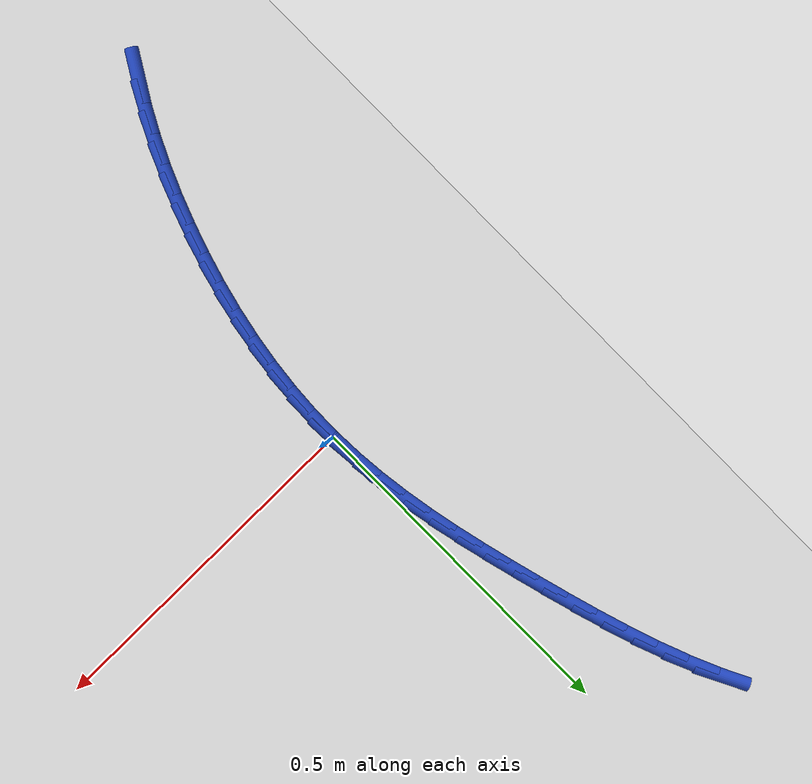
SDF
<sdf version="1.6">
 <world name="default">
  <model name="ground_plane">
   <static>1</static>
   <link name="link">
    <collision name="collision">
     <geometry><plane><normal>0 0 1</normal><size>100 100</size></plane></geometry>
     <surface><friction><ode><mu>100</mu><mu2>50</mu2></ode></friction></surface>
    </collision>
    <visual name="visual">
     <cast_shadows>0</cast_shadows>
     <geometry><plane><normal>0 0 1</normal><size>100 100</size></plane></geometry>
     <material>
      <script><uri>file://media/materials/scripts/gazebo.material</uri><name>Gazebo/WhiteGlow</name></script>
     </material>
    </visual>
   </link>
  </model>
  <model name="line">
   <link name="link_0">
    <pose>-1.214306433183765e-17 6.938893903907228e-18 0.01 0 1.57 -1.5278417276715544</pose>
    <collision name="collision">
     <geometry><cylinder><radius>0.01</radius><length>0.08</length></cylinder></geometry>
    </collision>
    <visual name="visual">
     <material>
      <script><name>Gazebo/Blue</name><uri>file://media/materials/scripts/gazebo.material</uri></script>
     </material>
     <geometry><cylinder><radius>0.01</radius><length>0.08</length></cylinder></geometry>
    </visual>
   </link>
   <link name="link_1">
    <pose>-0.001841011206535081 0.042833103393000345 0.01 0 1.57 -1.4783494542227635</pose>
    <collision name="collision">
     <geometry><cylinder><radius>0.01</radius><length>0.08</length></cylinder></geometry>
    </collision>
    <visual name="visual">
     <material>
      <script><name>Gazebo/Blue</name><uri>file://media/materials/scripts/gazebo.material</uri></script>
     </material>
     <geometry><cylinder><radius>0.01</radius><length>0.08</length></cylinder></geometry>
    </visual>
   </link>
   <link name="link_2">
    <pose>-0.005796762681849369 0.0855005918954934 0.01 0 1.57 -1.434578861854866</pose>
    <collision name="collision">
     <geometry><cylinder><radius>0.01</radius><length>0.08</length></cylinder></geometry>
    </collision>
    <visual name="visual">
     <material>
      <script><name>Gazebo/Blue</name><uri>file://media/materials/scripts/gazebo.material</uri></script>
     </material>
     <geometry><cylinder><radius>0.01</radius><length>0.08</length></cylinder></geometry>
    </visual>
   </link>
   <link name="link_3">
    <pose>-0.0116405768046681 0.12813554299801427 0.01 0 1.57 -1.3969493244081939</pose>
    <collision name="collision">
     <geometry><cylinder><radius>0.01</radius><length>0.08</length></cylinder></geometry>
    </collision>
    <visual name="visual">
     <material>
      <script><name>Gazebo/Blue</name><uri>file://media/materials/scripts/gazebo.material</uri></script>
     </material>
     <geometry><cylinder><radius>0.01</radius><length>0.08</length></cylinder></geometry>
    </visual>
   </link>
   <link name="link_4">
    <pose>-0.019145775953716537 0.17087103419109848 0.01 0 1.57 -1.3656684076454348</pose>
    <collision name="collision">
     <geometry><cylinder><radius>0.01</radius><length>0.08</length></cylinder></geometry>
    </collision>
    <visual name="visual">
     <material>
      <script><name>Gazebo/Blue</name><uri>file://media/materials/scripts/gazebo.material</uri></script>
     </material>
     <geometry><cylinder><radius>0.01</radius><length>0.08</length></cylinder></geometry>
    </visual>
   </link>
   <link name="link_5">
    <pose>-0.028085682507719905 0.213840142965281 0.01 0 1.57 -1.3407712673327594</pose>
    <collision name="collision">
     <geometry><cylinder><radius>0.01</radius><length>0.08</length></cylinder></geometry>
    </collision>
    <visual name="visual">
     <material>
      <script><name>Gazebo/Blue</name><uri>file://media/materials/scripts/gazebo.material</uri></script>
     </material>
     <geometry><cylinder><radius>0.01</radius><length>0.08</length></cylinder></geometry>
    </visual>
   </link>
   <link name="link_6">
    <pose>-0.03823361884540343 0.25717594681109707 0.01 0 1.57 -1.3221625516908762</pose>
    <collision name="collision">
     <geometry><cylinder><radius>0.01</radius><length>0.08</length></cylinder></geometry>
    </collision>
    <visual name="visual">
     <material>
      <script><name>Gazebo/Blue</name><uri>file://media/materials/scripts/gazebo.material</uri></script>
     </material>
     <geometry><cylinder><radius>0.01</radius><length>0.08</length></cylinder></geometry>
    </visual>
   </link>
   <link name="link_7">
    <pose>-0.049362907345492396 0.30101152321908214 0.01 0 1.57 -1.3096531524751374</pose>
    <collision name="collision">
     <geometry><cylinder><radius>0.01</radius><length>0.08</length></cylinder></geometry>
    </collision>
    <visual name="visual">
     <material>
      <script><name>Gazebo/Blue</name><uri>file://media/materials/scripts/gazebo.material</uri></script>
     </material>
     <geometry><cylinder><radius>0.01</radius><length>0.08</length></cylinder></geometry>
    </visual>
   </link>
   <link name="link_8">
    <pose>-0.06124690448104832 0.3454799068336491 0.01 0 1.57 -1.3004330214131437</pose>
    <collision name="collision">
     <geometry><cylinder><radius>0.01</radius><length>0.08</length></cylinder></geometry>
    </collision>
    <visual name="visual">
     <material>
      <script><name>Gazebo/Blue</name><uri>file://media/materials/scripts/gazebo.material</uri></script>
     </material>
     <geometry><cylinder><radius>0.01</radius><length>0.08</length></cylinder></geometry>
    </visual>
   </link>
   <link name="link_9">
    <pose>-0.07375135922839249 0.3905980232646502 0.01 0 1.57 -1.286233361920139</pose>
    <collision name="collision">
     <geometry><cylinder><radius>0.01</radius><length>0.08</length></cylinder></geometry>
    </collision>
    <visual name="visual">
     <material>
      <script><name>Gazebo/Blue</name><uri>file://media/materials/scripts/gazebo.material</uri></script>
     </material>
     <geometry><cylinder><radius>0.01</radius><length>0.08</length></cylinder></geometry>
    </visual>
   </link>
   <link name="link_10">
    <pose>-0.08703555744562069 0.4360139123060065 0.01 0 1.57 -1.2653246378833036</pose>
    <collision name="collision">
     <geometry><cylinder><radius>0.01</radius><length>0.08</length></cylinder></geometry>
    </collision>
    <visual name="visual">
     <material>
      <script><name>Gazebo/Blue</name><uri>file://media/materials/scripts/gazebo.material</uri></script>
     </material>
     <geometry><cylinder><radius>0.01</radius><length>0.08</length></cylinder></geometry>
    </visual>
   </link>
   <link name="link_11">
    <pose>-0.10131694668544898 0.48130252234300114 0.01 0 1.57 -1.2373445891181185</pose>
    <collision name="collision">
     <geometry><cylinder><radius>0.01</radius><length>0.08</length></cylinder></geometry>
    </collision>
    <visual name="visual">
     <material>
      <script><name>Gazebo/Blue</name><uri>file://media/materials/scripts/gazebo.material</uri></script>
     </material>
     <geometry><cylinder><radius>0.01</radius><length>0.08</length></cylinder></geometry>
    </visual>
   </link>
   <link name="link_12">
    <pose>-0.11681297450059346 0.5260388017609174 0.01 0 1.57 -1.2016776090968448</pose>
    <collision name="collision">
     <geometry><cylinder><radius>0.01</radius><length>0.08</length></cylinder></geometry>
    </collision>
    <visual name="visual">
     <material>
      <script><name>Gazebo/Blue</name><uri>file://media/materials/scripts/gazebo.material</uri></script>
     </material>
     <geometry><cylinder><radius>0.01</radius><length>0.08</length></cylinder></geometry>
    </visual>
   </link>
   <link name="link_13">
    <pose>-0.1337410884437702 0.5697976989450391 0.01 0 1.57 -1.157460944009564</pose>
    <collision name="collision">
     <geometry><cylinder><radius>0.01</radius><length>0.08</length></cylinder></geometry>
    </collision>
    <visual name="visual">
     <material>
      <script><name>Gazebo/Blue</name><uri>file://media/materials/scripts/gazebo.material</uri></script>
     </material>
     <geometry><cylinder><radius>0.01</radius><length>0.08</length></cylinder></geometry>
    </visual>
   </link>
   <link name="link_14">
    <pose>-0.15231873606769528 0.612154162280649 0.01 0 1.57 -1.1035992679864668</pose>
    <collision name="collision">
     <geometry><cylinder><radius>0.01</radius><length>0.08</length></cylinder></geometry>
    </collision>
    <visual name="visual">
     <material>
      <script><name>Gazebo/Blue</name><uri>file://media/materials/scripts/gazebo.material</uri></script>
     </material>
     <geometry><cylinder><radius>0.01</radius><length>0.08</length></cylinder></geometry>
    </visual>
   </link>
   <link name="link_167">
    <pose>-0.15830973780689783 -0.5460209391047602 0.01 0 1.57 1.0243441585339543</pose>
    <collision name="collision">
     <geometry><cylinder><radius>0.01</radius><length>0.08</length></cylinder></geometry>
    </collision>
    <visual name="visual">
     <material>
      <script><name>Gazebo/Blue</name><uri>file://media/materials/scripts/gazebo.material</uri></script>
     </material>
     <geometry><cylinder><radius>0.01</radius><length>0.08</length></cylinder></geometry>
    </visual>
   </link>
   <link name="link_168">
    <pose>-0.13539289584246364 -0.5083432864179626 0.01 0 1.57 1.0768500036716306</pose>
    <collision name="collision">
     <geometry><cylinder><radius>0.01</radius><length>0.08</length></cylinder></geometry>
    </collision>
    <visual name="visual">
     <material>
      <script><name>Gazebo/Blue</name><uri>file://media/materials/scripts/gazebo.material</uri></script>
     </material>
     <geometry><cylinder><radius>0.01</radius><length>0.08</length></cylinder></geometry>
    </visual>
   </link>
   <link name="link_169">
    <pose>-0.1143011926529099 -0.4691734453756451 0.01 0 1.57 1.1248148366655994</pose>
    <collision name="collision">
     <geometry><cylinder><radius>0.01</radius><length>0.08</length></cylinder></geometry>
    </collision>
    <visual name="visual">
     <material>
      <script><name>Gazebo/Blue</name><uri>file://media/materials/scripts/gazebo.material</uri></script>
     </material>
     <geometry><cylinder><radius>0.01</radius><length>0.08</length></cylinder></geometry>
    </visual>
   </link>
   <link name="link_170">
    <pose>-0.09498381921795743 -0.4287696965987247 0.01 0 1.57 1.1687697552500147</pose>
    <collision name="collision">
     <geometry><cylinder><radius>0.01</radius><length>0.08</length></cylinder></geometry>
    </collision>
    <visual name="visual">
     <material>
      <script><name>Gazebo/Blue</name><uri>file://media/materials/scripts/gazebo.material</uri></script>
     </material>
     <geometry><cylinder><radius>0.01</radius><length>0.08</length></cylinder></geometry>
    </visual>
   </link>
   <link name="link_171">
    <pose>-0.07738996651732814 -0.38739032070812074 0.01 0 1.57 1.2092197955949242</pose>
    <collision name="collision">
     <geometry><cylinder><radius>0.01</radius><length>0.08</length></cylinder></geometry>
    </collision>
    <visual name="visual">
     <material>
      <script><name>Gazebo/Blue</name><uri>file://media/materials/scripts/gazebo.material</uri></script>
     </material>
     <geometry><cylinder><radius>0.01</radius><length>0.08</length></cylinder></geometry>
    </visual>
   </link>
   <link name="link_172">
    <pose>-0.061468825530742864 -0.34529359832474993 0.01 0 1.57 1.2471835286583257</pose>
    <collision name="collision">
     <geometry><cylinder><radius>0.01</radius><length>0.08</length></cylinder></geometry>
    </collision>
    <visual name="visual">
     <material>
      <script><name>Gazebo/Blue</name><uri>file://media/materials/scripts/gazebo.material</uri></script>
     </material>
     <geometry><cylinder><radius>0.01</radius><length>0.08</length></cylinder></geometry>
    </visual>
   </link>
   <link name="link_173">
    <pose>-0.04718819902304927 -0.30271618169743 0.01 0 1.57 1.2857801432903784</pose>
    <collision name="collision">
     <geometry><cylinder><radius>0.01</radius><length>0.08</length></cylinder></geometry>
    </collision>
    <visual name="visual">
     <material>
      <script><name>Gazebo/Blue</name><uri>file://media/materials/scripts/gazebo.material</uri></script>
     </material>
     <geometry><cylinder><radius>0.01</radius><length>0.08</length></cylinder></geometry>
    </visual>
   </link>
   <link name="link_174">
    <pose>-0.03460982177751267 -0.2597855666113369 0.01 0 1.57 1.326097511016488</pose>
    <collision name="collision">
     <geometry><cylinder><radius>0.01</radius><length>0.08</length></cylinder></geometry>
    </collision>
    <visual name="visual">
     <material>
      <script><name>Gazebo/Blue</name><uri>file://media/materials/scripts/gazebo.material</uri></script>
     </material>
     <geometry><cylinder><radius>0.01</radius><length>0.08</length></cylinder></geometry>
    </visual>
   </link>
   <link name="link_175">
    <pose>-0.02382499424650742 -0.21659489119661562 0.01 0 1.57 1.368339744051683</pose>
    <collision name="collision">
     <geometry><cylinder><radius>0.01</radius><length>0.08</length></cylinder></geometry>
    </collision>
    <visual name="visual">
     <material>
      <script><name>Gazebo/Blue</name><uri>file://media/materials/scripts/gazebo.material</uri></script>
     </material>
     <geometry><cylinder><radius>0.01</radius><length>0.08</length></cylinder></geometry>
    </visual>
   </link>
   <link name="link_176">
    <pose>-0.01492502779262047 -0.17323728090487725 0.01 0 1.57 1.4127076020115392</pose>
    <collision name="collision">
     <geometry><cylinder><radius>0.01</radius><length>0.08</length></cylinder></geometry>
    </collision>
    <visual name="visual">
     <material>
      <script><name>Gazebo/Blue</name><uri>file://media/materials/scripts/gazebo.material</uri></script>
     </material>
     <geometry><cylinder><radius>0.01</radius><length>0.08</length></cylinder></geometry>
    </visual>
   </link>
   <link name="link_177">
    <pose>-0.008001233778439275 -0.12980586118773535 0.01 0 1.57 1.4593941257057033</pose>
    <collision name="collision">
     <geometry><cylinder><radius>0.01</radius><length>0.08</length></cylinder></geometry>
    </collision>
    <visual name="visual">
     <material>
      <script><name>Gazebo/Blue</name><uri>file://media/materials/scripts/gazebo.material</uri></script>
     </material>
     <geometry><cylinder><radius>0.01</radius><length>0.08</length></cylinder></geometry>
    </visual>
   </link>
   <link name="link_178">
    <pose>-0.003144923566550724 -0.08639375749680062 0.01 0 1.57 1.508577981271521</pose>
    <collision name="collision">
     <geometry><cylinder><radius>0.01</radius><length>0.08</length></cylinder></geometry>
    </collision>
    <visual name="visual">
     <material>
      <script><name>Gazebo/Blue</name><uri>file://media/materials/scripts/gazebo.material</uri></script>
     </material>
     <geometry><cylinder><radius>0.01</radius><length>0.08</length></cylinder></geometry>
    </visual>
   </link>
   <link name="link_179">
    <pose>-0.00044740851954193795 -0.04309409528368494 0.01 0 1.57 1.5604145693301652</pose>
    <collision name="collision">
     <geometry><cylinder><radius>0.01</radius><length>0.08</length></cylinder></geometry>
    </collision>
    <visual name="visual">
     <material>
      <script><name>Gazebo/Blue</name><uri>file://media/materials/scripts/gazebo.material</uri></script>
     </material>
     <geometry><cylinder><radius>0.01</radius><length>0.08</length></cylinder></geometry>
    </visual>
   </link>
   <link name="link_180">
    <pose>-1.0408340855860843e-17 -6.938893903907228e-17 0.01 0 1.57 -1.5265678796080762</pose>
    <collision name="collision">
     <geometry><cylinder><radius>0.01</radius><length>0.08</length></cylinder></geometry>
    </collision>
    <visual name="visual">
     <material>
      <script><name>Gazebo/Blue</name><uri>file://media/materials/scripts/gazebo.material</uri></script>
     </material>
     <geometry><cylinder><radius>0.01</radius><length>0.08</length></cylinder></geometry>
    </visual>
   </link>
   <link name="link_181">
    <pose>-0.001894009370512038 0.04279540290264225 0.01 0 1.57 -1.5265678796080762</pose>
    <collision name="collision">
     <geometry><cylinder><radius>0.01</radius><length>0.08</length></cylinder></geometry>
    </collision>
    <visual name="visual">
     <material>
      <script><name>Gazebo/Blue</name><uri>file://media/materials/scripts/gazebo.material</uri></script>
     </material>
     <geometry><cylinder><radius>0.01</radius><length>0.08</length></cylinder></geometry>
    </visual>
   </link>
  </model>
 </world>
</sdf>
